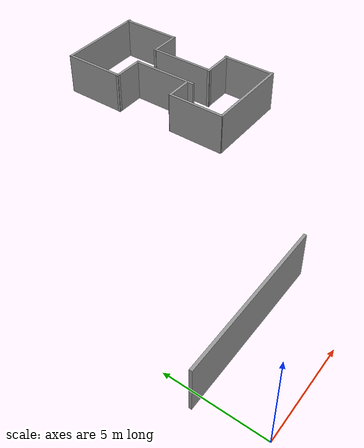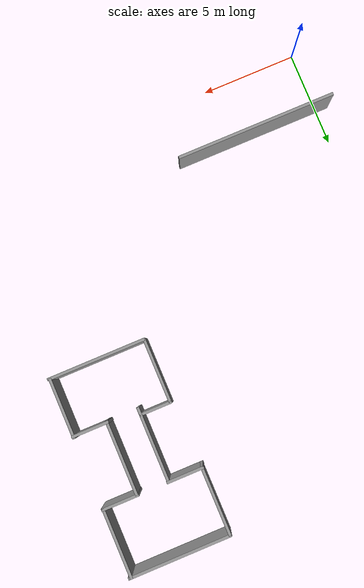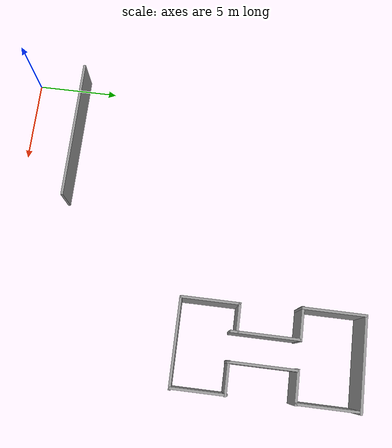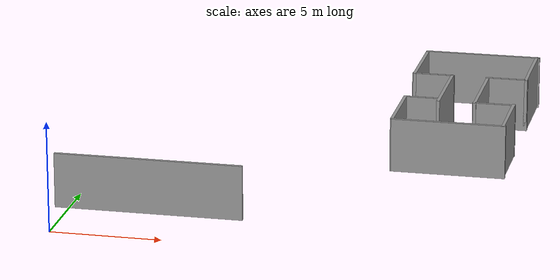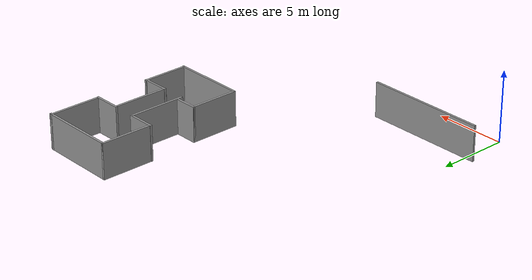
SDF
<?xml version='1.0'?>
<sdf version='1.7'>
  <model name='pedsim_model2'>
    <pose>-15854.3 -11256.4 0 0 -0 0</pose>
    <link name='Wall_27'>
      <collision name='Wall_27_Collision'>
        <geometry>
          <box>
            <size>8.5 0.15 2.5</size>
          </box>
        </geometry>
        <pose>0 0 1.25 0 -0 0</pose>
      </collision>
      <visual name='Wall_27_Visual'>
        <pose>0 0 1.25 0 -0 0</pose>
        <geometry>
          <box>
            <size>8.5 0.15 2.5</size>
          </box>
        </geometry>
        <material>
          <script>
            <uri>file://media/materials/scripts/gazebo.material</uri>
            <name>Gazebo/Grey</name>
          </script>
          <ambient>1 1 1 1</ambient>
        </material>
        <meta>
          <layer>0</layer>
        </meta>
      </visual>
      <pose>15857.9 11259.6 0 0 -0 3.14159</pose>
    </link>
    <link name='Wall_31'>
      <collision name='Wall_31_Collision'>
        <geometry>
          <box>
            <size>4 0.15 2.5</size>
          </box>
        </geometry>
        <pose>0 0 1.25 0 -0 0</pose>
      </collision>
      <visual name='Wall_31_Visual'>
        <pose>0 0 1.25 0 -0 0</pose>
        <geometry>
          <box>
            <size>4 0.15 2.5</size>
          </box>
        </geometry>
        <material>
          <script>
            <uri>file://media/materials/scripts/gazebo.material</uri>
            <name>Gazebo/Grey</name>
          </script>
          <ambient>1 1 1 1</ambient>
        </material>
        <meta>
          <layer>0</layer>
        </meta>
      </visual>
      <pose>15868.9 11272.4 0 0 -0 1.5708</pose>
    </link>
    <link name='Wall_32'>
      <collision name='Wall_32_Collision'>
        <geometry>
          <box>
            <size>2 0.15 2.5</size>
          </box>
        </geometry>
        <pose>0 0 1.25 0 -0 0</pose>
      </collision>
      <visual name='Wall_32_Visual'>
        <pose>0 0 1.25 0 -0 0</pose>
        <geometry>
          <box>
            <size>2 0.15 2.5</size>
          </box>
        </geometry>
        <material>
          <script>
            <uri>file://media/materials/scripts/gazebo.material</uri>
            <name>Gazebo/Grey</name>
          </script>
          <ambient>1 1 1 1</ambient>
        </material>
        <meta>
          <layer>0</layer>
        </meta>
      </visual>
      <pose>15868 11274.4 0 0 -0 3.14159</pose>
    </link>
    <link name='Wall_33'>
      <collision name='Wall_33_Collision'>
        <geometry>
          <box>
            <size>3.75 0.15 2.5</size>
          </box>
        </geometry>
        <pose>0 0 1.25 0 -0 0</pose>
      </collision>
      <visual name='Wall_33_Visual'>
        <pose>0 0 1.25 0 -0 0</pose>
        <geometry>
          <box>
            <size>3.75 0.15 2.5</size>
          </box>
        </geometry>
        <material>
          <script>
            <uri>file://media/materials/scripts/gazebo.material</uri>
            <name>Gazebo/Grey</name>
          </script>
          <ambient>1 1 1 1</ambient>
        </material>
        <meta>
          <layer>0</layer>
        </meta>
      </visual>
      <pose>15867.1 11276.2 0 0 -0 1.5708</pose>
    </link>
    <link name='Wall_34'>
      <collision name='Wall_34_Collision'>
        <geometry>
          <box>
            <size>5.5 0.15 2.5</size>
          </box>
        </geometry>
        <pose>0 0 1.25 0 -0 0</pose>
      </collision>
      <visual name='Wall_34_Visual'>
        <pose>0 0 1.25 0 -0 0</pose>
        <geometry>
          <box>
            <size>5.5 0.15 2.5</size>
          </box>
        </geometry>
        <material>
          <script>
            <uri>file://media/materials/scripts/gazebo.material</uri>
            <name>Gazebo/Grey</name>
          </script>
          <ambient>1 1 1 1</ambient>
        </material>
        <meta>
          <layer>0</layer>
        </meta>
      </visual>
      <pose>15869.8 11278 0 0 -0 0</pose>
    </link>
    <link name='Wall_35'>
      <collision name='Wall_35_Collision'>
        <geometry>
          <box>
            <size>3.75 0.15 2.5</size>
          </box>
        </geometry>
        <pose>0 0 1.25 0 -0 0</pose>
      </collision>
      <visual name='Wall_35_Visual'>
        <pose>0 0 1.25 0 -0 0</pose>
        <geometry>
          <box>
            <size>3.75 0.15 2.5</size>
          </box>
        </geometry>
        <material>
          <script>
            <uri>file://media/materials/scripts/gazebo.material</uri>
            <name>Gazebo/Grey</name>
          </script>
          <ambient>1 1 1 1</ambient>
        </material>
        <meta>
          <layer>0</layer>
        </meta>
      </visual>
      <pose>15872.4 11276.2 0 0 -0 -1.5708</pose>
    </link>
    <link name='Wall_36'>
      <collision name='Wall_36_Collision'>
        <geometry>
          <box>
            <size>2 0.15 2.5</size>
          </box>
        </geometry>
        <pose>0 0 1.25 0 -0 0</pose>
      </collision>
      <visual name='Wall_36_Visual'>
        <pose>0 0 1.25 0 -0 0</pose>
        <geometry>
          <box>
            <size>2 0.15 2.5</size>
          </box>
        </geometry>
        <material>
          <script>
            <uri>file://media/materials/scripts/gazebo.material</uri>
            <name>Gazebo/Grey</name>
          </script>
          <ambient>1 1 1 1</ambient>
        </material>
        <meta>
          <layer>0</layer>
        </meta>
      </visual>
      <pose>15871.5 11274.4 0 0 -0 3.14159</pose>
    </link>
    <link name='Wall_37'>
      <collision name='Wall_37_Collision'>
        <geometry>
          <box>
            <size>4 0.15 2.5</size>
          </box>
        </geometry>
        <pose>0 0 1.25 0 -0 0</pose>
      </collision>
      <visual name='Wall_37_Visual'>
        <pose>0 0 1.25 0 -0 0</pose>
        <geometry>
          <box>
            <size>4 0.15 2.5</size>
          </box>
        </geometry>
        <material>
          <script>
            <uri>file://media/materials/scripts/gazebo.material</uri>
            <name>Gazebo/Grey</name>
          </script>
          <ambient>1 1 1 1</ambient>
        </material>
        <meta>
          <layer>0</layer>
        </meta>
      </visual>
      <pose>15870.6 11272.4 0 0 -0 -1.5708</pose>
    </link>
    <link name='Wall_38'>
      <collision name='Wall_38_Collision'>
        <geometry>
          <box>
            <size>2 0.15 2.5</size>
          </box>
        </geometry>
        <pose>0 0 1.25 0 -0 0</pose>
      </collision>
      <visual name='Wall_38_Visual'>
        <pose>0 0 1.25 0 -0 0</pose>
        <geometry>
          <box>
            <size>2 0.15 2.5</size>
          </box>
        </geometry>
        <material>
          <script>
            <uri>file://media/materials/scripts/gazebo.material</uri>
            <name>Gazebo/Grey</name>
          </script>
          <ambient>1 1 1 1</ambient>
        </material>
        <meta>
          <layer>0</layer>
        </meta>
      </visual>
      <pose>15871.5 11270.5 0 0 -0 0</pose>
    </link>
    <link name='Wall_39'>
      <collision name='Wall_39_Collision'>
        <geometry>
          <box>
            <size>3.25 0.15 2.5</size>
          </box>
        </geometry>
        <pose>0 0 1.25 0 -0 0</pose>
      </collision>
      <visual name='Wall_39_Visual'>
        <pose>0 0 1.25 0 -0 0</pose>
        <geometry>
          <box>
            <size>3.25 0.15 2.5</size>
          </box>
        </geometry>
        <material>
          <script>
            <uri>file://media/materials/scripts/gazebo.material</uri>
            <name>Gazebo/Grey</name>
          </script>
          <ambient>1 1 1 1</ambient>
        </material>
        <meta>
          <layer>0</layer>
        </meta>
      </visual>
      <pose>15872.4 11269 0 0 -0 -1.5708</pose>
    </link>
    <link name='Wall_4'>
      <collision name='Wall_4_Collision'>
        <geometry>
          <box>
            <size>14463 0.15 2.5</size>
          </box>
        </geometry>
        <pose>0 0 1.25 0 -0 0</pose>
      </collision>
      <visual name='Wall_4_Visual'>
        <pose>0 0 1.25 0 -0 0</pose>
        <geometry>
          <box>
            <size>14463 0.15 2.5</size>
          </box>
        </geometry>
        <material>
          <script>
            <uri>file://media/materials/scripts/gazebo.material</uri>
            <name>Gazebo/Grey</name>
          </script>
          <ambient>1 1 1 1</ambient>
        </material>
        <meta>
          <layer>0</layer>
        </meta>
      </visual>
      <pose>-10759 -6164.53 0 0 -0 2.35619</pose>
    </link>
    <link name='Wall_40'>
      <collision name='Wall_40_Collision'>
        <geometry>
          <box>
            <size>5.25 0.15 2.5</size>
          </box>
        </geometry>
        <pose>0 0 1.25 0 -0 0</pose>
      </collision>
      <visual name='Wall_40_Visual'>
        <pose>0 0 1.25 0 -0 0</pose>
        <geometry>
          <box>
            <size>5.25 0.15 2.5</size>
          </box>
        </geometry>
        <material>
          <script>
            <uri>file://media/materials/scripts/gazebo.material</uri>
            <name>Gazebo/Grey</name>
          </script>
          <ambient>1 1 1 1</ambient>
        </material>
        <meta>
          <layer>0</layer>
        </meta>
      </visual>
      <pose>15869.9 11267.4 0 0 -0 3.14159</pose>
    </link>
    <link name='Wall_41'>
      <collision name='Wall_41_Collision'>
        <geometry>
          <box>
            <size>3.5 0.15 2.5</size>
          </box>
        </geometry>
        <pose>0 0 1.25 0 -0 0</pose>
      </collision>
      <visual name='Wall_41_Visual'>
        <pose>0 0 1.25 0 -0 0</pose>
        <geometry>
          <box>
            <size>3.5 0.15 2.5</size>
          </box>
        </geometry>
        <material>
          <script>
            <uri>file://media/materials/scripts/gazebo.material</uri>
            <name>Gazebo/Grey</name>
          </script>
          <ambient>1 1 1 1</ambient>
        </material>
        <meta>
          <layer>0</layer>
        </meta>
      </visual>
      <pose>15867.3 11269.1 0 0 -0 1.5708</pose>
    </link>
    <link name='Wall_42'>
      <collision name='Wall_42_Collision'>
        <geometry>
          <box>
            <size>1.75 0.15 2.5</size>
          </box>
        </geometry>
        <pose>0 0 1.25 0 -0 0</pose>
      </collision>
      <visual name='Wall_42_Visual'>
        <pose>0 0 1.25 0 -0 0</pose>
        <geometry>
          <box>
            <size>1.75 0.15 2.5</size>
          </box>
        </geometry>
        <material>
          <script>
            <uri>file://media/materials/scripts/gazebo.material</uri>
            <name>Gazebo/Grey</name>
          </script>
          <ambient>1 1 1 1</ambient>
        </material>
        <meta>
          <layer>0</layer>
        </meta>
      </visual>
      <pose>15868.1 11270.8 0 0 -0 0</pose>
    </link>
    <static>1</static>
  </model>
</sdf>
